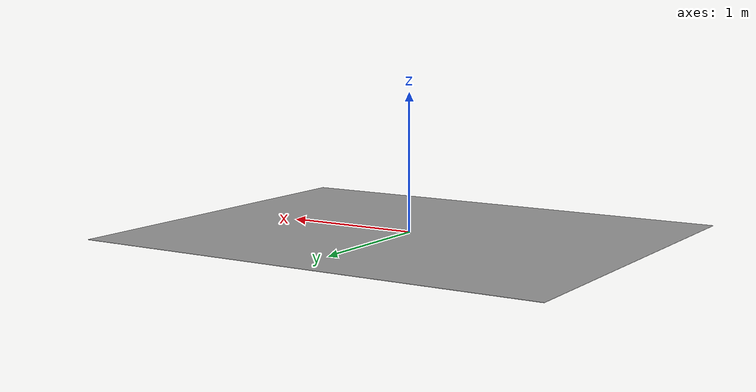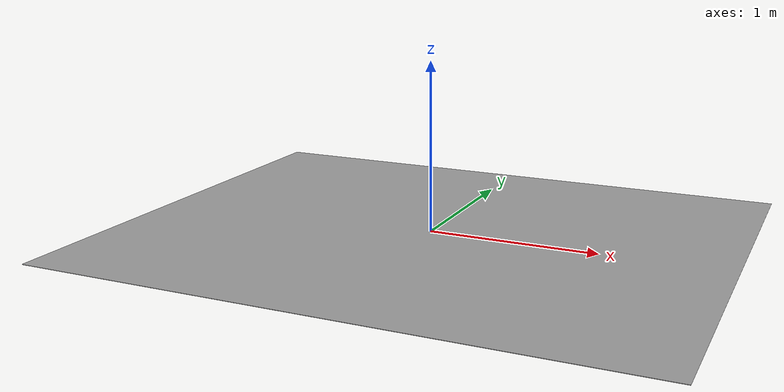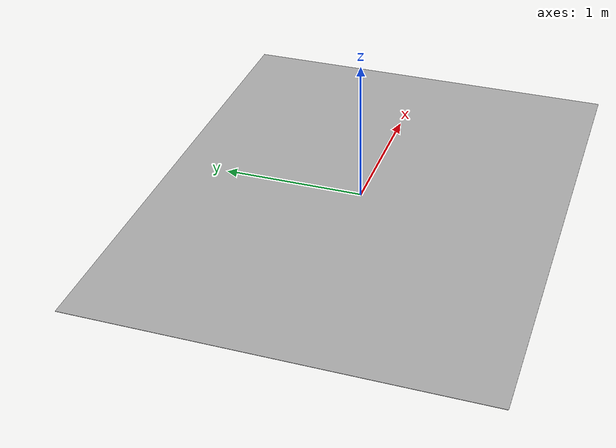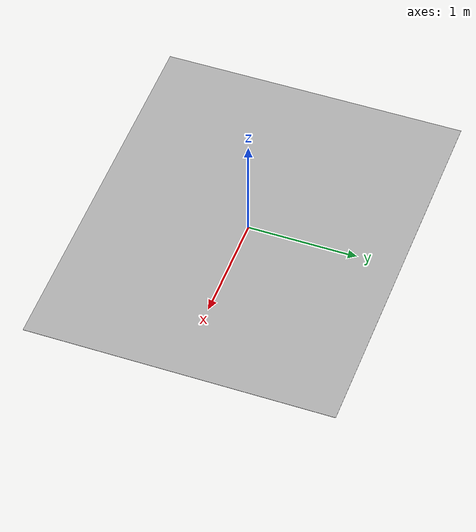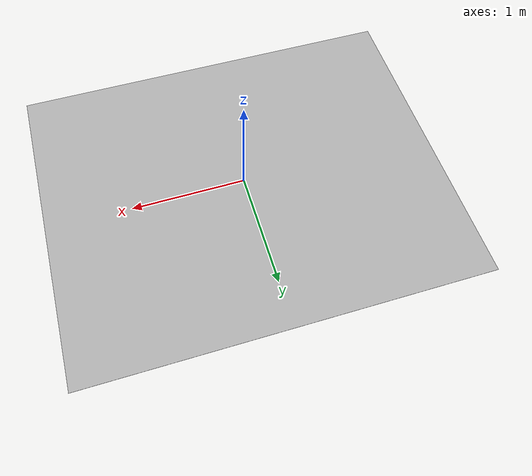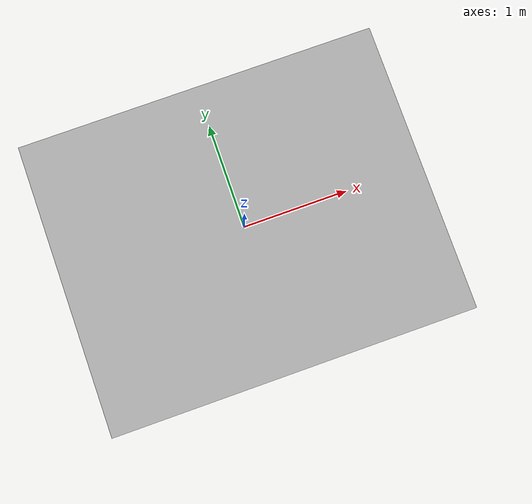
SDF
<?xml version="1.0"?>
<sdf version="1.6">
  <model name="arena_ground">
    <static>true</static>
    <link name="link">
      <collision name="collision">
        <geometry>
          <plane>
            <normal>0 0 1</normal>
            <size>3.5 2.8</size>
          </plane>
        </geometry>
        <surface>
          <friction>
            <ode>
              <mu>100</mu>
              <mu2>50</mu2>
            </ode>
          </friction>
        </surface>
      </collision>
      <visual name="visual">
        <cast_shadows>false</cast_shadows>
        <geometry>
          <plane>
            <normal>0 0 1</normal>
            <size>3.5 2.8</size>
          </plane>
        </geometry>
        <material>
          <script>
            <uri>model://arena_ground/materials/scripts</uri>
            <uri>model://arena_ground/materials/textures</uri>
            <name>AutoStackArena/Banner</name>
          </script>
        </material>
      </visual>
    </link>
  </model>
</sdf>
